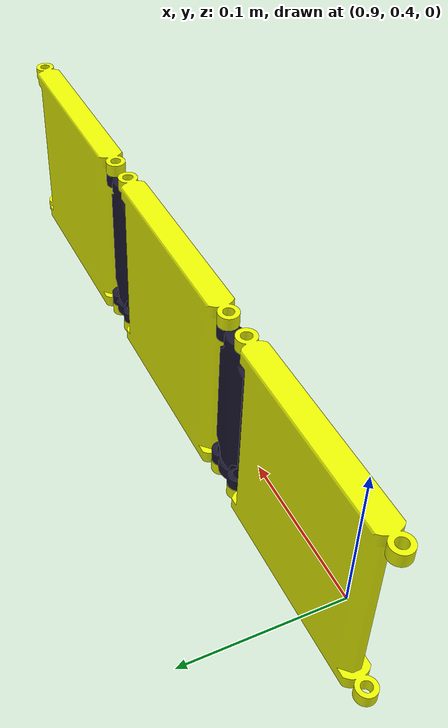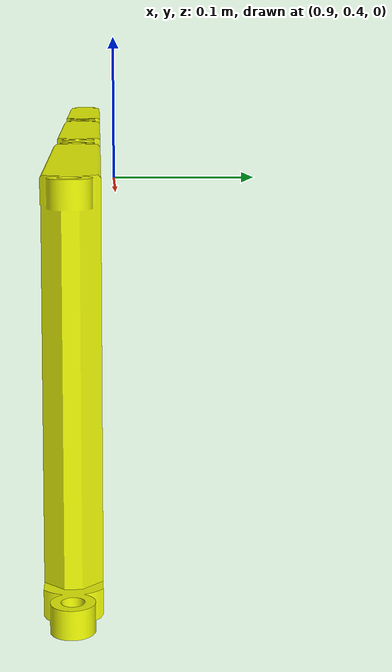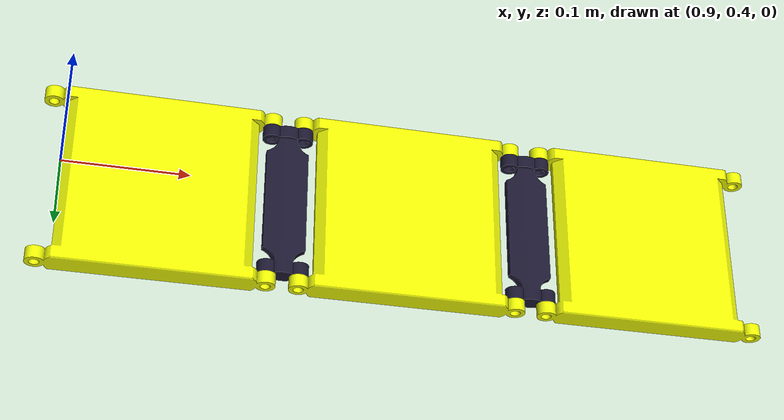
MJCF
<mujoco model="f_block">

  <default>
    <include file="../assets/foldable_block_3/f_block_classes.xml" />
  </default>

  <asset>
    <include file="../assets/foldable_block_3/f_block_assets.xml" />
  </asset>

  <worldbody>

    <!-- 3 body structure -->

    <body name="f3_block_1" pos="0.9 0.37 0.05" quat=" 1    0         0         0 ">
        <joint name="f3_block_free_joint" type="free"/>
        <inertial mass="0.5" pos="0.075 0.01 -0.075" diaginertia="0.0102675 0.0102675 0.00666"/>

        <geom mesh="f3_block_plate" rgba="0.9278748131857267 0.9750400105728048 0.011301633201228567 1"  class="f3_block_visual"/>
        <geom mesh="f3_block_plate_collision_0" rgba="0.18076945838831482 0.19889101927907116 0.8724239034434478 1" class="f3_block_collision" />
        <geom mesh="f3_block_plate_collision_1" rgba="0.8349444943689354 0.6761946945189133 0.33010370045568516 1" class="f3_block_collision"/>
        <geom mesh="f3_block_plate_collision_2" rgba="0.8938555477495602 0.370864054702849 0.04724099909715218 1" class="f3_block_collision"/>
        <geom mesh="f3_block_plate_collision_3" rgba="0.3162295518708149 0.43406955044978357 0.9791849935326291 1" class="f3_block_collision"/>
        <geom mesh="f3_block_plate_collision_4" rgba="0.99271047162903 0.9285073596818263 0.12479439747228471 1" class="f3_block_collision"/>
        <geom mesh="f3_block_plate_collision_5" rgba="0.05935130030960267 0.7529771890764725 0.22837089692494694 1" class="f3_block_collision"/>

      <body name="f3_block_2" pos="0.150 0.0 -0.0" quat="1 0 0 0">
          <inertial mass="0.05" pos="0.020 0.010 -0.075" diaginertia="0.0102675 0.0102675 0.00666"/>
          <joint name="f3_block_1_joint" pos="0.01 0.01 0.0" axis="0 0 1"  damping="0.1" range="-3.14 4.7115"/>

          <geom mesh="f3_block_link" rgba="0.105 0.091 0.188 1"  class="f3_block_visual"/>
          <geom mesh="f3_block_link_collision_0" rgba="0.2992562329040618 0.4252512394630181 0.831912094117138 1" class="f3_block_collision"/>
          <geom mesh="f3_block_link_collision_1" rgba="0.1595922727019311 0.9696162877792459 0.7224056856424816 1" class="f3_block_collision"/>
          <geom mesh="f3_block_link_collision_2" rgba="0.5697960670610052 0.058134170473644775 0.022095857956316856 1" class="f3_block_collision"/>
          <geom mesh="f3_block_link_collision_3" rgba="0.4917060296470629 0.3552274733575328 0.8838357735143907 1" class="f3_block_collision"/>
          <geom mesh="f3_block_link_collision_4" rgba="0.818091198063223 0.9977975896167404 0.9309074839164203 1" class="f3_block_collision"/>
          <geom mesh="f3_block_link_collision_5" rgba="0.2045959024773919 0.8322210462263822 0.8901627770026551 1" class="f3_block_collision"/>
          <geom mesh="f3_block_link_collision_6" rgba="0.009942686740152862 0.9703182884271851 0.5732672283776591 1" class="f3_block_collision"/>
          <geom mesh="f3_block_link_collision_7" rgba="0.7804299043810422 0.31807659347790285 0.5917882320637473 1" class="f3_block_collision"/>
          <geom mesh="f3_block_link_collision_8" rgba="0.9671768451814209 0.19808913405221396 0.23480364706907042 1" class="f3_block_collision"/>
          <geom mesh="f3_block_link_collision_9" rgba="0.15242985507146656 0.36353944985387865 0.73685715043536 1" class="f3_block_collision"/>

        <body name="f3_block_3" pos="0.045 0.0 0.00" quat=" 1    0         0         0 ">
            <joint name="f3_block_2_joint" pos="-0.01 0.01 0.0" axis="0 0 1"  damping="0.1" range="-3.14 4.7115"/>
            <inertial mass="0.5" pos="0.075 0.01 -0.075" diaginertia="0.0102675 0.0102675 0.00666"/>

            <geom mesh="f3_block_plate" rgba="0.9278748131857267 0.9750400105728048 0.011301633201228567 1"  class="f3_block_visual"/>
            <geom mesh="f3_block_plate_collision_0" rgba="0.18076945838831482 0.19889101927907116 0.8724239034434478 1" class="f3_block_collision" />
            <geom mesh="f3_block_plate_collision_1" rgba="0.8349444943689354 0.6761946945189133 0.33010370045568516 1" class="f3_block_collision"/>
            <geom mesh="f3_block_plate_collision_2" rgba="0.8938555477495602 0.370864054702849 0.04724099909715218 1" class="f3_block_collision"/>
            <geom mesh="f3_block_plate_collision_3" rgba="0.3162295518708149 0.43406955044978357 0.9791849935326291 1" class="f3_block_collision"/>
            <geom mesh="f3_block_plate_collision_4" rgba="0.99271047162903 0.9285073596818263 0.12479439747228471 1" class="f3_block_collision"/>
            <geom mesh="f3_block_plate_collision_5" rgba="0.05935130030960267 0.7529771890764725 0.22837089692494694 1" class="f3_block_collision"/>

          <body name="f3_block_4" pos="0.150 0.0 0.0" quat="1 0 0 0">
              <inertial mass="0.05" pos="0.020 0.010 -0.075" diaginertia="0.0102675 0.0102675 0.00666"/>
              <joint name="f3_block_3_joint" pos="0.01 0.01 0.0" axis="0 0 1"  damping="0.1" range="-3.14 4.7115"/>

              <geom mesh="f3_block_link" rgba="0.105 0.091 0.188 1"  class="f3_block_visual"/>
              <geom mesh="f3_block_link_collision_0" rgba="0.2992562329040618 0.4252512394630181 0.831912094117138 1" class="f3_block_collision"/>
              <geom mesh="f3_block_link_collision_1" rgba="0.1595922727019311 0.9696162877792459 0.7224056856424816 1" class="f3_block_collision"/>
              <geom mesh="f3_block_link_collision_2" rgba="0.5697960670610052 0.058134170473644775 0.022095857956316856 1" class="f3_block_collision"/>
              <geom mesh="f3_block_link_collision_3" rgba="0.4917060296470629 0.3552274733575328 0.8838357735143907 1" class="f3_block_collision"/>
              <geom mesh="f3_block_link_collision_4" rgba="0.818091198063223 0.9977975896167404 0.9309074839164203 1" class="f3_block_collision"/>
              <geom mesh="f3_block_link_collision_5" rgba="0.2045959024773919 0.8322210462263822 0.8901627770026551 1" class="f3_block_collision"/>
              <geom mesh="f3_block_link_collision_6" rgba="0.009942686740152862 0.9703182884271851 0.5732672283776591 1" class="f3_block_collision"/>
              <geom mesh="f3_block_link_collision_7" rgba="0.7804299043810422 0.31807659347790285 0.5917882320637473 1" class="f3_block_collision"/>
              <geom mesh="f3_block_link_collision_8" rgba="0.9671768451814209 0.19808913405221396 0.23480364706907042 1" class="f3_block_collision"/>
              <geom mesh="f3_block_link_collision_9" rgba="0.15242985507146656 0.36353944985387865 0.73685715043536 1" class="f3_block_collision"/>

              <body name="f3_block_5" pos="0.045 0.0 0.0" quat="1 0 0 0">
                  <joint name="f3_block_4_joint" pos="-0.01 0.01 0.0" axis="0 0 1"  damping="0.1" range="-3.14 4.7115"/>
                  <inertial mass="0.5" pos="0.075 0.01 -0.075" diaginertia="0.0102675 0.0102675 0.00666"/>

                  <geom mesh="f3_block_plate" rgba="0.9278748131857267 0.9750400105728048 0.011301633201228567 1"  class="f3_block_visual"/>
                  <geom mesh="f3_block_plate_collision_0" rgba="0.18076945838831482 0.19889101927907116 0.8724239034434478 1" class="f3_block_collision" />
                  <geom mesh="f3_block_plate_collision_1" rgba="0.8349444943689354 0.6761946945189133 0.33010370045568516 1" class="f3_block_collision"/>
                  <geom mesh="f3_block_plate_collision_2" rgba="0.8938555477495602 0.370864054702849 0.04724099909715218 1" class="f3_block_collision"/>
                  <geom mesh="f3_block_plate_collision_3" rgba="0.3162295518708149 0.43406955044978357 0.9791849935326291 1" class="f3_block_collision"/>
                  <geom mesh="f3_block_plate_collision_4" rgba="0.99271047162903 0.9285073596818263 0.12479439747228471 1" class="f3_block_collision"/>
                  <geom mesh="f3_block_plate_collision_5" rgba="0.05935130030960267 0.7529771890764725 0.22837089692494694 1" class="f3_block_collision"/>

            </body>

          </body>

        </body>

      </body>

    </body>

  </worldbody>

  <actuator>
    <!-- actuators for position control -->

    <!-- actuators for velocity control -->

    <!-- actuators for torque control -->

  </actuator>

</mujoco>

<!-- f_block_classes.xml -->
<mujocoinclude>
    <default class="f3_block_visual">
    <geom group="2" type="mesh" contype="0" conaffinity="0" friction="0.2 0.005 0.0001"/>
    </default>
    <default class="f3_block_collision">
    <geom group="3" type="mesh" contype="1" conaffinity="1" friction="0.2 0.005 0.0001"/>
    </default>
</mujocoinclude>

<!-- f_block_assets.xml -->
<mujocoinclude>
    <!-- block 1 assets -->
    <mesh file="../assets/foldable_block_3/assets/f3_block_link/f3_block_link.obj"/>
    <mesh file="../assets/foldable_block_3/assets/f3_block_link/f3_block_link_collision_0.obj"/>
    <mesh file="../assets/foldable_block_3/assets/f3_block_link/f3_block_link_collision_1.obj"/>
    <mesh file="../assets/foldable_block_3/assets/f3_block_link/f3_block_link_collision_2.obj"/>
    <mesh file="../assets/foldable_block_3/assets/f3_block_link/f3_block_link_collision_3.obj"/>
    <mesh file="../assets/foldable_block_3/assets/f3_block_link/f3_block_link_collision_4.obj"/>
    <mesh file="../assets/foldable_block_3/assets/f3_block_link/f3_block_link_collision_5.obj"/>
    <mesh file="../assets/foldable_block_3/assets/f3_block_link/f3_block_link_collision_6.obj"/>
    <mesh file="../assets/foldable_block_3/assets/f3_block_link/f3_block_link_collision_7.obj"/>
    <mesh file="../assets/foldable_block_3/assets/f3_block_link/f3_block_link_collision_8.obj"/>
    <mesh file="../assets/foldable_block_3/assets/f3_block_link/f3_block_link_collision_9.obj"/>

    <!-- block 2 assets -->
    <mesh file="../assets/foldable_block_3/assets/f3_block_plate/f3_block_plate.obj"/>
    <mesh file="../assets/foldable_block_3/assets/f3_block_plate/f3_block_plate_collision_0.obj"/>
    <mesh file="../assets/foldable_block_3/assets/f3_block_plate/f3_block_plate_collision_1.obj"/>
    <mesh file="../assets/foldable_block_3/assets/f3_block_plate/f3_block_plate_collision_2.obj"/>
    <mesh file="../assets/foldable_block_3/assets/f3_block_plate/f3_block_plate_collision_3.obj"/>
    <mesh file="../assets/foldable_block_3/assets/f3_block_plate/f3_block_plate_collision_4.obj"/>
    <mesh file="../assets/foldable_block_3/assets/f3_block_plate/f3_block_plate_collision_5.obj"/>

</mujocoinclude>
